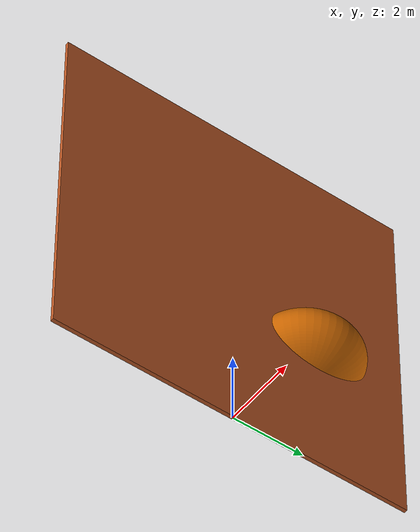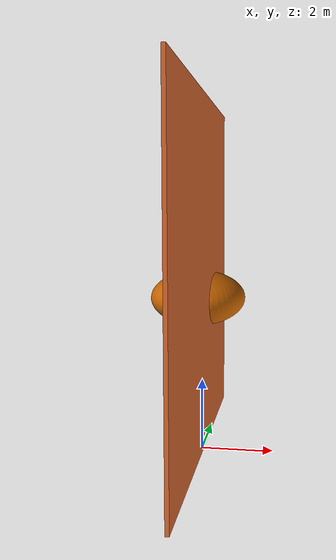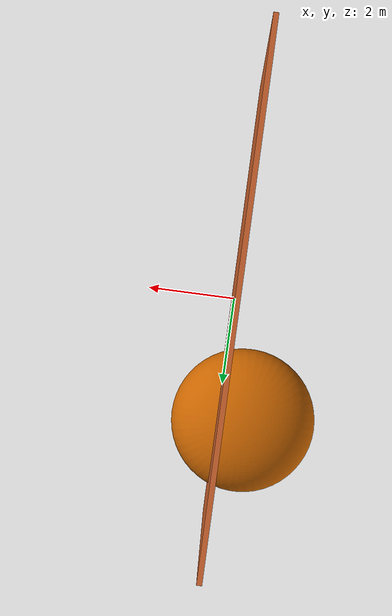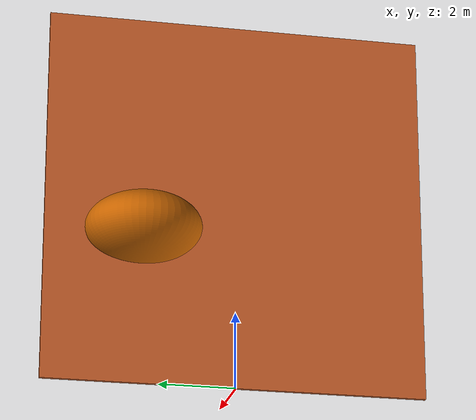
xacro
<?xml version="1.0" encoding="utf-8"?>
<robot name="climb_wall2" xmlns:xacro="http://ros.org/wiki/xacro">

 <material name="Black">
    <color rgba="${0/255} ${0/255} ${0/255} 1.0"/>
  </material>

 <material name="Red">
    <color rgba="${255/255} ${100/255} ${0/255} 1.0"/>
  </material>

 <material name="Brown">
    <color rgba="${198/255} ${94/255} ${42/255} 1.0"/>
  </material>

 <material name="DarkBrown">
    <color rgba="${144/255} ${68/255} ${30/255} 1.0"/>
  </material>

<material name="orange">
  <color rgba="0.8 0.4 0.0 1.0"/>
</material>
 <!--https://www.textures.com/browse/cliffs/2060 -->

<xacro:arg name="obstacle" default="true"/>

<xacro:arg name="anchorZ" default="10."/>
<xacro:arg name="wall_inclination" default="0.0"/>

<xacro:arg name="obstacle_location_x" default="-0.5"/>
<xacro:arg name="obstacle_location_y" default="2.5"/>
<xacro:arg name="obstacle_location_z" default="-6"/>
<xacro:arg name="obstacle_size_x" default="1.5"/>
<xacro:arg name="obstacle_size_y" default="1.5"/>
<xacro:arg name="obstacle_size_z" default="0.866"/>

	<link name="wall">
		<inertial>
 	        <mass value="10"/>
 	        <inertia ixx="0.4" ixy="0.0" ixz="0.0" iyy="0.4" iyz="0.0" izz="0.2"/>
  	     </inertial>

		<visual > <!-- dont put name otherwise gazebo discards color-->
 			<origin xyz="${$(arg anchorZ)/2 *sin($(arg wall_inclination))}  0 ${$(arg anchorZ) * (1-0.5*cos($(arg wall_inclination)))}" rpy="0  -$(arg wall_inclination) 0"/>
			<geometry>
				<box size="0.1 $(arg anchorZ) $(arg anchorZ)"/>
			</geometry>
			<material name="Brown"/><!--rviz"/-->

		</visual>
	        <collision name="box">
		       <origin xyz="${$(arg anchorZ)/2 *sin($(arg wall_inclination))} 0 ${$(arg anchorZ) * (1-0.5*cos($(arg wall_inclination)))}" rpy="0  -$(arg wall_inclination) 0"/>
		       <geometry>
 				<box size="0.1 $(arg anchorZ) $(arg anchorZ)"/>
	        	</geometry>

				 <surface>
				  <bounce>
				    <restitution_coefficient>0.01</restitution_coefficient>
				    <threshold>5.0</threshold>
				  </bounce>
				  <friction>
				    <ode>
       			           <mu>1</mu>
				       <mu2>1</mu2>
				    </ode>
				  </friction>
				  <contact>
				     <ode>
					<max_vel>0.1</max_vel>
					<min_depth>0.001</min_depth>
					<kp>1000000.0</kp>
					<kd>1000.0</kd>
				      </ode>
				    </contact>
				</surface>
	       </collision>

	</link>

	<xacro:if value="$(arg obstacle)">

		  <joint name="base_pillar" type="fixed">
		    <parent link="wall"/>
		    <child link="pillar"/>
		    <origin rpy="0 0 0" xyz="0 0 0"/>
		  </joint>

		<link name="pillar">
		<inertial>
 	        <mass value="10"/>
 	        <inertia ixx="0.4" ixy="0.0" ixz="0.0" iyy="0.4" iyz="0.0" izz="0.2"/>
  	        </inertial>

		<visual > <!-- dont put name otherwise gazebo discards color-->
 			  <origin rpy="0 0 0" xyz="$(arg obstacle_location_x) $(arg obstacle_location_y)  ${$(arg anchorZ) + $(arg obstacle_location_z)} "/>
			<geometry>

	                  <mesh filename="package://climbingrobot_description/meshes/ellipsoid.stl" scale="${$(arg obstacle_size_x)/1.5}  ${$(arg obstacle_size_y)/1.5}  ${$(arg obstacle_size_z)/0.866} "/>
	                </geometry>
			 <material name="orange"/>

		</visual>
		<collision>
			<origin rpy="0 0 0" xyz="$(arg obstacle_location_x) $(arg obstacle_location_y)  ${$(arg anchorZ) + $(arg obstacle_location_z)} "/>
			 <geometry>

	                  <mesh filename="package://climbingrobot_description/meshes/ellipsoid.stl" scale="${$(arg obstacle_size_x)/1.5}  ${$(arg obstacle_size_y)/1.5}  ${$(arg obstacle_size_z)/0.866} "/>
	                </geometry>

	       </collision>

		</link>

	</xacro:if>

	<gazebo>
	    <static>true</static>
	</gazebo>

	 <!--one of this /usr/share/gazebo-11/media/materials/scripts/gazebo.material   is for gazebo -->

	<gazebo reference="wall">
   	 <material>Gazebo/RockWall</material>
  	</gazebo>

	<gazebo reference="pillar">
   	 <material>Gazebo/RockWall</material>
  	</gazebo>

</robot>
